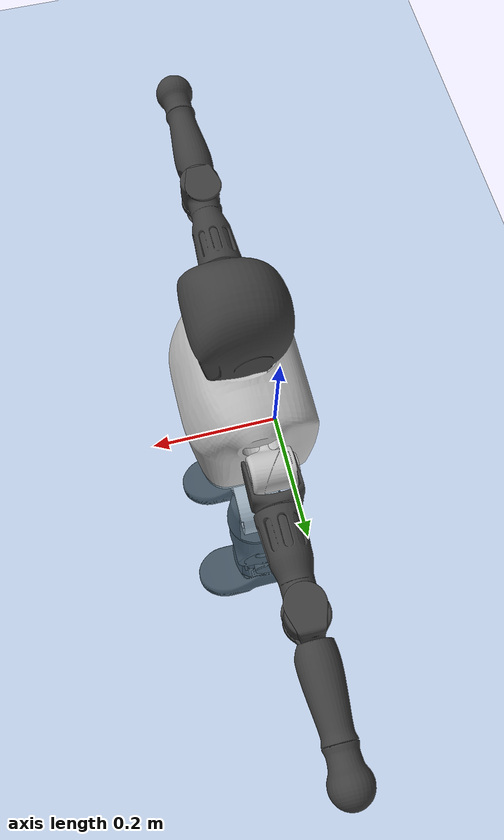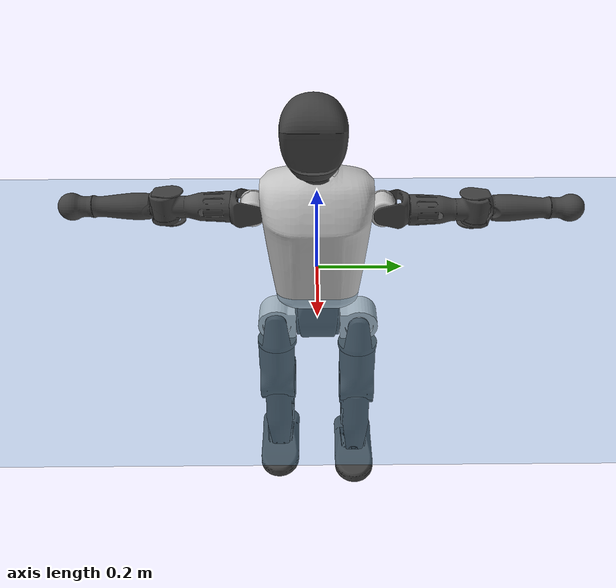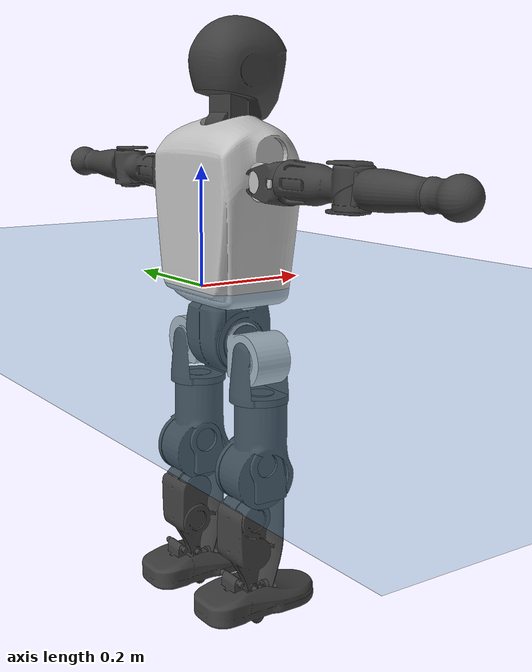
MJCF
<mujoco model="T1">
  <compiler angle="radian" assetdir="assets" balanceinertia="true" inertiafromgeom="false"/>

  <option timestep="0.005" density="1.2" viscosity="2e-05"/>

  <size nkey="1"/>

  <visual>
    <quality shadowsize="8192"/>
    <map shadowclip="0.5"/>
  </visual>

  <default>
    <default class="/">
      <joint armature="0.01" damping="0.01" frictionloss="0.1"/>
      <geom contype="0" conaffinity="0" group="1" solref="-1000 -80"/>
      <site size="0.01 0.005 0.005" group="5"/>
      <general forcelimited="true" biastype="affine" gainprm="25" biasprm="0 -25 -0.6"/>
      <default class="t1">
        <geom rgba="0.25 0.25 0.25 1"/>
        <default class="visual">
          <geom type="mesh" group="2"/>
        </default>
        <default class="collision">
          <geom group="3"/>
        </default>
        <default class="foot">
          <geom size="0.1115 0.05 0.015" type="box" condim="6" group="4" priority="1" solimp="0.015 1 0.015"/>
        </default>
        <default class="reward_collision_sphere">
          <geom group="5" rgba="1 0 0 1"/>
        </default>
      </default>
    </default>
  </default>

  <asset>
    <texture type="skybox" colorspace="auto" name="//unnamed_texture_0" builtin="gradient" rgb1="0.95 0.95 0.95" rgb2="0.95 0.95 0.95" width="100" height="600"/>
    <texture type="2d" colorspace="auto" name="texplane" builtin="checker" rgb1="0.345 0.575 0.748" rgb2="0.345 0.575 0.748" markrgb="1 1 1" width="512" height="512"/>
    <material name="MatPlane" class="/" texture="texplane" texuniform="true" texrepeat="2 2" specular="0.9"/>
    <mesh name="Trunk" class="/" file="Trunk.stl"/>
    <mesh name="H1" class="/" file="H1.stl"/>
    <mesh name="H2" class="/" file="H2.stl"/>
    <mesh name="AL1" class="/" file="AL1.stl"/>
    <mesh name="AL2" class="/" file="AL2.stl"/>
    <mesh name="AL3" class="/" file="AL3.stl"/>
    <mesh name="left_hand_link" class="/" file="left_hand_link.stl"/>
    <mesh name="AR1" class="/" file="AR1.stl"/>
    <mesh name="AR2" class="/" file="AR2.stl"/>
    <mesh name="AR3" class="/" file="AR3.stl"/>
    <mesh name="right_hand_link" class="/" file="right_hand_link.stl"/>
    <mesh name="Waist" class="/" file="Waist.stl"/>
    <mesh name="Hip_Pitch_Left" class="/" file="Hip_Pitch_Left.stl"/>
    <mesh name="Hip_Roll_Left" class="/" file="Hip_Roll_Left.stl"/>
    <mesh name="Hip_Yaw_Left" class="/" file="Hip_Yaw_Left.stl"/>
    <mesh name="Shank_Left" class="/" file="Shank_Left.stl"/>
    <mesh name="Ankle_Cross_Left" class="/" file="Ankle_Cross_Left.stl"/>
    <mesh name="left_foot_link" class="/" file="left_foot_link.stl"/>
    <mesh name="Hip_Pitch_Right" class="/" file="Hip_Pitch_Right.stl"/>
    <mesh name="Hip_Roll_Right" class="/" file="Hip_Roll_Right.stl"/>
    <mesh name="Hip_Yaw_Right" class="/" file="Hip_Yaw_Right.stl"/>
    <mesh name="Shank_Right" class="/" file="Shank_Right.stl"/>
    <mesh name="Ankle_Cross_Right" class="/" file="Ankle_Cross_Right.stl"/>
    <mesh name="right_foot_link" class="/" file="right_foot_link.stl"/>
  </asset>

  <worldbody>
    <geom name="floor" class="/" size="100 100 0.125" type="plane" group="0" material="MatPlane"/>
    <light name="toplight_shadow" class="/" pos="0 0 5" dir="0.0990148 0.0990148 -0.990148" type="directional" ambient="0.04 0.04 0.04" diffuse="0.55 0.55 0.55" specular="0.12 0.12 0.12"/>
    <light name="toplight_fill" class="/" pos="0 0 5" dir="0.0990148 0.0990148 -0.990148" type="directional" castshadow="false" ambient="0.04 0.04 0.04" diffuse="0.3 0.3 0.3" specular="0.08 0.08 0.08"/>
    <body name="trunk" childclass="t1" pos="0.000786757 -0.000113339 0.00273851" quat="1 0.00017035 -0.000425531 0.000245999">
      <inertial pos="0.0455901 0.000904602 0.0854938" quat="0.999886 0.00887684 -0.00982964 0.00725011" mass="7.18591" diaginertia="0.0382574 0.0476622 0.0198545"/>
      <joint name="//unnamed_joint_0" type="free" armature="0" damping="0" frictionloss="0"/>
      <geom name="//unnamed_geom_1" class="visual" rgba="0.76 0.76 0.76 1" mesh="Trunk"/>
      <geom name="//unnamed_geom_2" class="collision" size="0.0642951 0.0857268 0.12859" pos="0.0506785 0 0.0980584" type="box"/>
      <geom name="//unnamed_geom_3" class="reward_collision_sphere" size="0.0985858" pos="0.0506785 0 0.0817153"/>
      <geom name="//unnamed_geom_4" class="reward_collision_sphere" size="0.012859" pos="0.0506785 0.0773507 0"/>
      <geom name="//unnamed_geom_5" class="reward_collision_sphere" size="0.012859" pos="0.0506785 -0.0773507 0"/>
      <geom name="//unnamed_geom_6" class="reward_collision_sphere" size="0.012859" pos="0.0506785 0.0973709 0.147088"/>
      <geom name="//unnamed_geom_7" class="reward_collision_sphere" size="0.012859" pos="0.0506785 -0.0973709 0.147088"/>
      <site name="imu" pos="0.00775919 -0.0120124 0.00903763" size="0.00857268"/>
      <camera name="track" pos="0 -1.82002 0" quat="0.707107 0.707107 0 0" mode="trackcom"/>
      <camera name="ego_camera" pos="0.103046 0 0.343204" quat="-0.5 -0.5 0.5 0.5"/>
      <body name="H1" pos="0.0498205 -0.00304221 0.197876" quat="0.999999 0.000699643 -0.000806934 -0.000593372">
        <inertial pos="-0.00250045 -0.00119336 0.0472461" quat="0.76161 -0.0121959 0.00116827 0.64792" mass="0.277229" diaginertia="0.00010673 0.000139138 5.6172e-05"/>
        <joint name="AAHead_yaw" pos="0 0 0" axis="0.000694398 0.000496884 1" stiffness="0.00915578" range="-1.53758 1.62169" armature="0.00868554" damping="0.0107595" frictionloss="0.0835449"/>
        <geom name="//unnamed_geom_8" class="visual" mesh="H1"/>
        <body name="H2" pos="-0.0006957 -0.00223911 0.0511427" quat="1 -2.35578e-05 3.50441e-05 3.30266e-05">
          <inertial pos="0.00760698 0.00298911 0.0832141" quat="0.989277 0.10086 -0.0735309 -0.0758442" mass="0.402716" diaginertia="0.000885115 0.001178 0.000630089"/>
          <joint name="Head_pitch" pos="0 0 0" axis="0.00108694 -0.999998 0.00147977" stiffness="0.00626899" range="-1.22869 0.403755" armature="0.00749185" damping="0" frictionloss="0.0844482"/>
          <geom name="//unnamed_geom_9" class="visual" mesh="H2"/>
          <geom name="//unnamed_geom_10" class="collision" size="0.0685814" pos="0.00844642 0 0.0898869"/>
          <geom name="//unnamed_geom_11" class="reward_collision_sphere" size="0.0771541" pos="0.0168928 0 0.0817153"/>
        </body>
      </body>
      <body name="AL1" pos="0.0479795 0.09703 0.177118" quat="1 0.000318192 -3.75291e-06 0.000469496">
        <inertial pos="0.0013707 0.0429889 0.00205187" quat="0.49439 0.498778 -0.504762 0.50201" mass="0.335192" diaginertia="0.00059442 0.000809747 0.000109604"/>
        <joint name="Left_Shoulder_Pitch" pos="0 0 0" axis="0.000702184 0.999998 0.00195072" range="-3.35523 1.16237" armature="0.00845242" damping="0.000614372" frictionloss="0.0854177"/>
        <geom name="//unnamed_geom_12" class="visual" rgba="0.76 0.76 0.76 1" mesh="AL1"/>
        <body name="AL2" pos="0.00222951 0.0457436 0.00019999" quat="1 -0.000834793 0.000105043 9.94094e-05">
          <inertial pos="0.00554435 0.0345497 -0.00289072" quat="0.487475 0.50958 -0.491206 0.511285" mass="0.105047" diaginertia="0.000179138 0.000228743 6.63653e-05"/>
          <joint name="Left_Shoulder_Roll" pos="0 0 0" axis="-0.999984 0.00271402 0.00489553" range="-1.62958 1.7432" armature="0.0095804" damping="0" frictionloss="0.0797557"/>
          <geom name="//unnamed_geom_13" class="visual" mesh="AL2"/>
          <body name="AL3" pos="0.00440459 0.0578604 -0.000331182" quat="1 0.000392487 -0.000189865 0.000320018">
            <inertial pos="-0.00159477 0.0765557 -8.47077e-05" quat="0.701033 0.713045 -0.00900257 0.0062237" mass="0.660461" diaginertia="0.0057478 0.00812414 0.000225598"/>
            <joint name="Left_Elbow_Pitch" pos="0 0 0" axis="0.000522426 -1 -0.000708265" stiffness="0.00750391" range="-2.31617 2.27133" armature="0.0083874" damping="0.00864912" frictionloss="0.0862993"/>
            <geom name="//unnamed_geom_14" class="visual" mesh="AL3"/>
            <geom name="//unnamed_geom_15" class="collision" size="0.025718 0.0642951" pos="0 0.0455004 0" quat="0.707105 0.707108 0 0" type="cylinder"/>
            <geom name="//unnamed_geom_16" class="reward_collision_sphere" size="0.0308616"/>
            <body name="left_hand_link" pos="0.000998825 0.135779 0.00383449" quat="0.999999 -0.000317332 -9.96088e-05 -0.00100703">
              <inertial pos="0.000430046 0.0978947 -0.00173409" quat="0.702732 0.711391 -0.00140236 -0.00943001" mass="0.203615" diaginertia="0.00355621 0.0049755 7.48924e-05"/>
              <joint name="Left_Elbow_Yaw" pos="0 0 0" axis="-0.0107526 0.0099726 0.999892" range="-2.45062 0.0501804" armature="0.00865424" damping="0" frictionloss="0.0923844"/>
              <geom name="//unnamed_geom_17" class="visual" mesh="left_hand_link"/>
              <geom name="//unnamed_geom_18" class="collision" size="0.025718 0.0750109" pos="0 0.118301 0" quat="0.707105 0.707108 0 0" type="cylinder"/>
              <geom name="//unnamed_geom_19" class="reward_collision_sphere" size="0.0428634"/>
              <geom name="//unnamed_geom_20" class="reward_collision_sphere" size="0.0300044" pos="0 0.100101 0"/>
              <geom name="//unnamed_geom_21" class="reward_collision_sphere" size="0.0300044" pos="0 0.195652 0"/>
            </body>
          </body>
        </body>
      </body>
      <body name="AR1" pos="0.0459917 -0.0931078 0.17826" quat="1 0.000143624 0.000282551 4.22111e-05">
        <inertial pos="-0.00192251 -0.0411512 -0.00110377" quat="0.505109 0.499247 -0.502401 0.493165" mass="0.347898" diaginertia="0.000590821 0.000816057 0.00010861"/>
        <joint name="Right_Shoulder_Pitch" pos="0 0 0" axis="-0.00186615 -0.99992 0.0125384" stiffness="0.0106407" range="-1.18775 3.3252" armature="0.00877726" damping="0.0200587" frictionloss="0.0847297"/>
        <geom name="//unnamed_geom_22" class="visual" rgba="0.76 0.76 0.76 1" mesh="AR1"/>
        <body name="AR2" pos="-0.00214719 -0.0394476 -0.000106412" quat="0.999999 -0.000501912 0.000321165 0.00115088">
          <inertial pos="0.000332584 -0.0327604 -0.00263002" quat="0.502886 0.488312 -0.510872 0.497662" mass="0.101812" diaginertia="0.000170875 0.00021604 6.52644e-05"/>
          <joint name="Right_Shoulder_Roll" pos="0 0 0" axis="-0.999955 -0.00478528 -0.00817603" stiffness="0.0112649" range="-1.69184 1.52976" armature="0.00854124" damping="0.0107071" frictionloss="0.0761354"/>
          <geom name="//unnamed_geom_23" class="visual" mesh="AR2"/>
          <body name="AR3" pos="-0.00249642 -0.0535098 0.00227873" quat="1 9.67674e-05 -0.000185071 0.000494151">
            <inertial pos="-0.000465219 -0.0780801 0.00109431" quat="0.703916 0.710277 0.000943928 0.00267495" mass="0.626025" diaginertia="0.005387 0.00830202 0.000226792"/>
            <joint name="Right_Elbow_Pitch" pos="0 0 0" axis="-0.00226744 0.999993 0.00301588" stiffness="0.00731016" range="-2.27417 2.26152" armature="0.00884546" damping="0.018904" frictionloss="0.0940947"/>
            <geom name="//unnamed_geom_24" class="visual" mesh="AR3"/>
            <geom name="//unnamed_geom_25" class="collision" size="0.025718 0.0642951" pos="0 -0.0455004 0" quat="0.707105 0.707108 0 0" type="cylinder"/>
            <geom name="//unnamed_geom_26" class="reward_collision_sphere" size="0.0308616"/>
            <body name="right_hand_link" pos="-0.00246225 -0.132318 0.000426907" quat="0.999999 -0.00056173 0.000160253 0.00123636">
              <inertial pos="-0.000246008 -0.0993489 0.00274188" quat="0.711218 0.702909 0.00817126 0.0045945" mass="0.200079" diaginertia="0.00331123 0.00496868 7.67688e-05"/>
              <joint name="Right_Elbow_Yaw" pos="0 0 0" axis="-0.00175049 -0.00220265 0.999996" stiffness="0.00195641" range="-0.0546508 2.43522" armature="0.00935668" damping="0.00932544" frictionloss="0.0851163"/>
              <geom name="//unnamed_geom_27" class="visual" mesh="right_hand_link"/>
              <geom name="//unnamed_geom_28" class="collision" size="0.025718 0.0750109" pos="0 -0.118301 0" quat="0.707105 0.707108 0 0" type="cylinder"/>
              <geom name="//unnamed_geom_29" class="reward_collision_sphere" size="0.0428634"/>
              <geom name="//unnamed_geom_30" class="reward_collision_sphere" size="0.0300044" pos="0 -0.100101 0"/>
              <geom name="//unnamed_geom_31" class="reward_collision_sphere" size="0.0300044" pos="0 -0.195652 0"/>
            </body>
          </body>
        </body>
      </body>
      <body name="Waist" pos="0.0535089 0.000995362 -0.0969585" quat="1 -3.16995e-05 -0.00014975 -5.83558e-05">
        <inertial pos="0.00347434 -0.000175722 0.00660596" quat="0.983857 -0.00948722 -0.178707 8.80109e-05" mass="1.62565" diaginertia="0.00222505 0.00311362 0.00165551"/>
        <joint name="Waist" pos="0 0 0" axis="0.00265695 0.000529513 0.999996" stiffness="0.00304702" range="-1.54033 1.6067" armature="0.0075922" damping="0.0161153" frictionloss="0.0902697"/>
        <geom name="//unnamed_geom_32" class="visual" mesh="Waist"/>
        <body name="Hip_Pitch_Left" pos="-0.0011229 0.0983962 -0.000807204" quat="1 0.000249213 -0.000501683 -0.00064133">
          <inertial pos="-0.00129901 -0.00510251 -0.0152396" quat="0.975073 0.221233 0.0166437 0.00325382" mass="0.622907" diaginertia="0.000750242 0.000892838 0.000443726"/>
          <joint name="Left_Hip_Pitch" pos="0 0 0" axis="-0.00509524 0.999985 -0.00214639" stiffness="0.0112243" range="-1.81403 1.62885" armature="0.00849796" damping="0.0223101" frictionloss="0.0861275"/>
          <geom name="//unnamed_geom_33" class="visual" rgba="0.76 0.76 0.76 1" mesh="Hip_Pitch_Left"/>
          <body name="Hip_Roll_Left" pos="0.00242677 -0.00125693 -0.019512" quat="0.999999 0.000302646 -0.00070165 -0.000645901">
            <inertial pos="-0.000470429 -0.000293724 -0.0448531" quat="0.707133 -0.00603435 -0.005996 0.70703" mass="0.241166" diaginertia="0.000755619 0.000916314 0.000181164"/>
            <joint name="Left_Hip_Roll" pos="0 0 0" axis="-0.999993 0.00216041 -0.00295146" range="-1.55663 0.187108" armature="0.00851246" damping="0.0155581" frictionloss="0.0974534"/>
            <geom name="//unnamed_geom_34" class="visual" mesh="Hip_Roll_Left"/>
            <geom name="//unnamed_geom_35" class="reward_collision_sphere" size="0.0471497"/>
            <body name="Hip_Yaw_Left" pos="-0.00030833 0.000900534 -0.0686173" quat="0.999999 -0.000132895 0.000550309 0.00118136">
              <inertial pos="-0.00670387 -0.000167608 -0.0721229" quat="0.691174 -0.0324491 -0.0327893 0.721214" mass="1.32675" diaginertia="0.0109538 0.0155146 0.000974645"/>
              <joint name="Left_Hip_Yaw" pos="0 0 0" axis="-0.00544477 0.00909144 -0.999944" range="-1.00862 0.986689" armature="0.00845483" damping="0.00303933" frictionloss="0.0854957"/>
              <geom name="//unnamed_geom_36" class="visual" mesh="Hip_Yaw_Left"/>
              <geom name="//unnamed_geom_37" class="collision" size="0.0428634 0.0685814" type="cylinder"/>
              <body name="Shank_Left" pos="-0.0122653 -0.00118995 -0.112162" quat="0.999999 0.000838448 0.000486795 0.000636706">
                <inertial pos="-0.00466098 0.00170174 -0.102801" quat="0.997233 0.000874016 -0.0126119 0.0732598" mass="1.12256" diaginertia="0.0145677 0.0225162 0.000685523"/>
                <joint name="Left_Knee_Pitch" pos="0 0 0" axis="-0.00391471 0.999991 -0.00157375" stiffness="0.00417384" range="0.0289646 2.34886" armature="0.00894575" damping="0.0157716" frictionloss="0.0966619"/>
                <geom name="//unnamed_geom_38" class="visual" mesh="Shank_Left"/>
                <geom name="//unnamed_geom_39" class="collision" size="0.0428634 0.0642951" pos="0 0 -0.0980584" type="cylinder"/>
                <geom name="//unnamed_geom_40" class="reward_collision_sphere" size="0.0557224"/>
                <body name="Ankle_Cross_Left" pos="-0.0018364 -0.00155284 -0.229686" quat="0.999999 -0.000494883 0.00113605 0.000418184">
                  <inertial pos="-0.00214806 0.00237311 -0.00803114" quat="0.436885 0.553745 0.551615 0.445218" mass="0.0469" diaginertia="1.32208e-05 1.58924e-05 4.1092e-06"/>
                  <joint name="Left_Ankle_Pitch" pos="0 0 0" axis="-0.0115901 0.999907 -0.00714665" range="-0.894354 0.40295" armature="0.00744281" damping="0.0195097" frictionloss="0.0961603"/>
                  <geom name="//unnamed_geom_41" class="visual" mesh="Ankle_Cross_Left"/>
                  <body name="left_foot_link" pos="0.00217034 -0.000889336 -0.0124714" quat="1 -0.000347035 0.000385671 0.000460194">
                    <inertial pos="-0.00131606 -0.00209953 -0.007443" quat="-0.00147097 0.620043 -0.000660467 0.784566" mass="0.419531" diaginertia="0.00120203 0.00148623 0.000807724"/>
                    <joint name="Left_Ankle_Roll" pos="0 0 0" axis="-0.999957 0.00613401 -0.00689232" range="-0.495055 0.405565" armature="0.00848511" damping="0.00242801" frictionloss="0.0814294"/>
                    <geom name="//unnamed_geom_42" class="visual" mesh="left_foot_link"/>
                    <geom name="left_foot" class="foot" size="0.0978111 0.0397002 0.014362" pos="0.00844642 0 -0.0122573"/>
                    <geom name="//unnamed_geom_44" class="reward_collision_sphere" size="0.0445779" pos="0.00844642 0 -0.0122573"/>
                    <geom name="//unnamed_geom_45" class="reward_collision_sphere" size="0.025718" pos="0.080241 -0.0209302 -0.0122573"/>
                    <geom name="//unnamed_geom_46" class="reward_collision_sphere" size="0.025718" pos="-0.0591249 -0.0209302 -0.0122573"/>
                    <site name="left_foot" class="foot" pos="0.00844642 0 -0.0122573" size="0.00857268"/>
                  </body>
                </body>
              </body>
            </body>
          </body>
        </body>
        <body name="Hip_Pitch_Right" pos="-0.00280108 -0.097996 0.00110558" quat="0.999999 -0.000348526 0.00122984 -0.000764955">
          <inertial pos="0.00018234 0.00796446 -0.0125698" quat="0.97149 -0.236918 0.00592229 -0.00642006" mass="0.647281" diaginertia="0.000783458 0.000922088 0.000474459"/>
          <joint name="Right_Hip_Pitch" pos="0 0 0" axis="-0.00731993 -0.999909 -0.0113569" range="-1.57774 1.79811" armature="0.00959394" damping="0.00679603" frictionloss="0.0969198"/>
          <geom name="//unnamed_geom_47" class="visual" rgba="0.76 0.76 0.76 1" mesh="Hip_Pitch_Right"/>
          <body name="Hip_Roll_Right" pos="0.000193693 -0.00204335 -0.0134208" quat="1 0.000319688 9.77933e-05 0.000597485">
            <inertial pos="0.00283243 0.000714212 -0.0465608" quat="0.70095 -0.00973889 0.00384515 0.713133" mass="0.233776" diaginertia="0.000697406 0.000918267 0.00018054"/>
            <joint name="Right_Hip_Roll" pos="0 0 0" axis="-0.999999 -0.000995929 0.000340268" stiffness="0.00630799" range="-0.19262 1.628" armature="0.00803929" damping="0.0085418" frictionloss="0.0855469"/>
            <geom name="//unnamed_geom_48" class="visual" mesh="Hip_Roll_Right"/>
            <geom name="//unnamed_geom_49" class="reward_collision_sphere" size="0.0471497"/>
            <body name="Hip_Yaw_Right" pos="-0.000312188 -0.00258518 -0.0668901" quat="0.999999 -0.000739305 0.000296723 -0.000923392">
              <inertial pos="-0.0026898 5.53156e-05 -0.0720522" quat="0.721103 -0.0369913 -0.0418346 0.690574" mass="1.43541" diaginertia="0.0117222 0.0165363 0.00100194"/>
              <joint name="Right_Hip_Yaw" pos="0 0 0" axis="0.00343853 -0.0128913 -0.999911" stiffness="0.00176938" range="-1.00693 0.978283" armature="0.0086234" damping="0.00279925" frictionloss="0.0761853"/>
              <geom name="//unnamed_geom_50" class="visual" mesh="Hip_Yaw_Right"/>
              <geom name="//unnamed_geom_51" class="collision" size="0.0428634 0.0685814" type="cylinder"/>
              <body name="Shank_Right" pos="-0.0140201 0.00254846 -0.111185" quat="0.999999 -0.000737878 0.00079391 1.89048e-05">
                <inertial pos="-0.00254384 0.00222033 -0.0997657" quat="0.999236 -0.000409588 -0.0238504 -0.0309431" mass="1.15975" diaginertia="0.0150596 0.0213388 0.000697679"/>
                <joint name="Right_Knee_Pitch" pos="0 0 0" axis="-0.00319346 -0.999979 -0.00558669" stiffness="0.00982003" range="-2.35339 -0.0228914" armature="0.00807479" damping="0.021795" frictionloss="0.0945291"/>
                <geom name="//unnamed_geom_52" class="visual" mesh="Shank_Right"/>
                <geom name="//unnamed_geom_53" class="collision" size="0.0428634 0.0642951" pos="0 0 -0.0980584" type="cylinder"/>
                <geom name="//unnamed_geom_54" class="reward_collision_sphere" size="0.0557224"/>
                <body name="Ankle_Cross_Right" pos="-0.00250737 -0.00150156 -0.231159" quat="0.999999 0.000783584 0.000974216 7.21558e-05">
                  <inertial pos="-0.00340087 0.000957317 -0.0072579" quat="0.44783 0.555876 0.547337 0.436889" mass="0.043044" diaginertia="1.20034e-05 1.53836e-05 4.03278e-06"/>
                  <joint name="Right_Ankle_Pitch" pos="0 0 0" axis="-0.00677617 -0.999975 0.00208138" stiffness="0.0025972" range="-0.35947 0.813712" armature="0.00974433" damping="0" frictionloss="0.0794526"/>
                  <geom name="//unnamed_geom_55" class="visual" mesh="Ankle_Cross_Right"/>
                  <body name="right_foot_link" pos="0.00217439 -4.23691e-05 -0.00694197" quat="0.999999 -0.00081171 -0.00047338 0.000884725">
                    <inertial pos="0.000392674 0.00114587 -0.00992818" quat="0.00251738 0.619929 -0.00265142 0.784649" mass="0.455524" diaginertia="0.00114391 0.00150284 0.000792234"/>
                    <joint name="Right_Ankle_Roll" pos="0 0 0" axis="-0.9999 0.00755824 -0.0119272" range="-0.410553 0.485947" armature="0.00725223" damping="0.00465178" frictionloss="0.0811799"/>
                    <geom name="//unnamed_geom_56" class="visual" mesh="right_foot_link"/>
                    <geom name="right_foot" class="foot" size="0.0985729 0.0436671 0.0132399" pos="0.00844642 0 -0.0122573"/>
                    <geom name="//unnamed_geom_58" class="reward_collision_sphere" size="0.0342907"/>
                    <geom name="//unnamed_geom_59" class="reward_collision_sphere" size="0.025718" pos="0.00844642 0 -0.0122573"/>
                    <geom name="//unnamed_geom_60" class="reward_collision_sphere" size="0.025718" pos="0.080241 0.0209302 -0.0122573"/>
                    <geom name="//unnamed_geom_61" class="reward_collision_sphere" size="0.025718" pos="-0.0591249 0.0209302 -0.0122573"/>
                    <site name="right_foot" class="foot" pos="0.00844642 0 -0.0122573" size="0.00857268"/>
                  </body>
                </body>
              </body>
            </body>
          </body>
        </body>
      </body>
    </body>
  </worldbody>

  <contact>
    <pair class="/" geom1="floor" geom2="left_foot" name="//unnamed_contact_0"/>
    <pair class="/" geom1="floor" geom2="right_foot" name="//unnamed_contact_1"/>
  </contact>

  <actuator>
    <general name="AAHead_yaw" class="/" joint="AAHead_yaw" forcerange="-5.49088 5.49088" gainprm="23.2822" biasprm="0 -23.2822 -0.535041"/>
    <general name="Head_pitch" class="/" joint="Head_pitch" forcerange="-5.79028 5.79028" gainprm="23.2822" biasprm="0 -23.2822 -0.535041"/>
    <general name="Left_Shoulder_Pitch" class="/" joint="Left_Shoulder_Pitch" forcerange="-15.2939 15.2939" gainprm="23.2822" biasprm="0 -23.2822 -0.535041"/>
    <general name="Left_Shoulder_Roll" class="/" joint="Left_Shoulder_Roll" forcerange="-15.1771 15.1771" gainprm="23.2822" biasprm="0 -23.2822 -0.535041"/>
    <general name="Left_Elbow_Pitch" class="/" joint="Left_Elbow_Pitch" forcerange="-17.0017 17.0017" gainprm="23.2822" biasprm="0 -23.2822 -0.535041"/>
    <general name="Left_Elbow_Yaw" class="/" joint="Left_Elbow_Yaw" forcerange="-15.8335 15.8335" gainprm="23.2822" biasprm="0 -23.2822 -0.535041"/>
    <general name="Right_Shoulder_Pitch" class="/" joint="Right_Shoulder_Pitch" forcerange="-15.2791 15.2791" gainprm="23.2822" biasprm="0 -23.2822 -0.535041"/>
    <general name="Right_Shoulder_Roll" class="/" joint="Right_Shoulder_Roll" forcerange="-15.5907 15.5907" gainprm="23.2822" biasprm="0 -23.2822 -0.535041"/>
    <general name="Right_Elbow_Pitch" class="/" joint="Right_Elbow_Pitch" forcerange="-15.0443 15.0443" gainprm="23.2822" biasprm="0 -23.2822 -0.535041"/>
    <general name="Right_Elbow_Yaw" class="/" joint="Right_Elbow_Yaw" forcerange="-16.8305 16.8305" gainprm="23.2822" biasprm="0 -23.2822 -0.535041"/>
    <general name="Waist" class="/" joint="Waist" forcerange="-27.989 27.989" gainprm="23.2822" biasprm="0 -23.2822 -0.535041"/>
    <general name="Left_Hip_Pitch" class="/" joint="Left_Hip_Pitch" forcerange="-36.4168 36.4168" gainprm="23.2822" biasprm="0 -23.2822 -0.535041"/>
    <general name="Left_Hip_Roll" class="/" joint="Left_Hip_Roll" forcerange="-25.564 25.564" gainprm="23.2822" biasprm="0 -23.2822 -0.535041"/>
    <general name="Left_Hip_Yaw" class="/" joint="Left_Hip_Yaw" forcerange="-26.8816 26.8816" gainprm="23.2822" biasprm="0 -23.2822 -0.535041"/>
    <general name="Left_Knee_Pitch" class="/" joint="Left_Knee_Pitch" forcerange="-55.8241 55.8241" gainprm="23.2822" biasprm="0 -23.2822 -0.535041"/>
    <general name="Left_Ankle_Pitch" class="/" joint="Left_Ankle_Pitch" forcerange="-16.7798 16.7798" gainprm="23.2822" biasprm="0 -23.2822 -0.535041"/>
    <general name="Left_Ankle_Roll" class="/" joint="Left_Ankle_Roll" forcerange="-12.6896 12.6896" gainprm="23.2822" biasprm="0 -23.2822 -0.535041"/>
    <general name="Right_Hip_Pitch" class="/" joint="Right_Hip_Pitch" forcerange="-41.47 41.47" gainprm="23.2822" biasprm="0 -23.2822 -0.535041"/>
    <general name="Right_Hip_Roll" class="/" joint="Right_Hip_Roll" forcerange="-25.7278 25.7278" gainprm="23.2822" biasprm="0 -23.2822 -0.535041"/>
    <general name="Right_Hip_Yaw" class="/" joint="Right_Hip_Yaw" forcerange="-26.8141 26.8141" gainprm="23.2822" biasprm="0 -23.2822 -0.535041"/>
    <general name="Right_Knee_Pitch" class="/" joint="Right_Knee_Pitch" forcerange="-56.9544 56.9544" gainprm="23.2822" biasprm="0 -23.2822 -0.535041"/>
    <general name="Right_Ankle_Pitch" class="/" joint="Right_Ankle_Pitch" forcerange="-15.8131 15.8131" gainprm="23.2822" biasprm="0 -23.2822 -0.535041"/>
    <general name="Right_Ankle_Roll" class="/" joint="Right_Ankle_Roll" forcerange="-11.9303 11.9303" gainprm="23.2822" biasprm="0 -23.2822 -0.535041"/>
  </actuator>

  <sensor>
    <gyro site="imu" name="imu_angular_velocity"/>
    <velocimeter site="imu" name="imu_linear_velocity"/>
    <framelinvel objtype="site" objname="left_foot" name="left_foot_global_linear_velocity"/>
    <framelinvel objtype="site" objname="right_foot" name="right_foot_global_linear_velocity"/>
  </sensor>

  <keyframe>
    <key name="home" qpos="0 0 0.6385 1 0 0 0 0 0 0 1.4 0 -0.4 0 -1.4 0 0.4 0 -0.4 0 0 0.8 -0.4 0 0.4 0 0 -0.8 0.4 0"/>
  </keyframe>
</mujoco>
